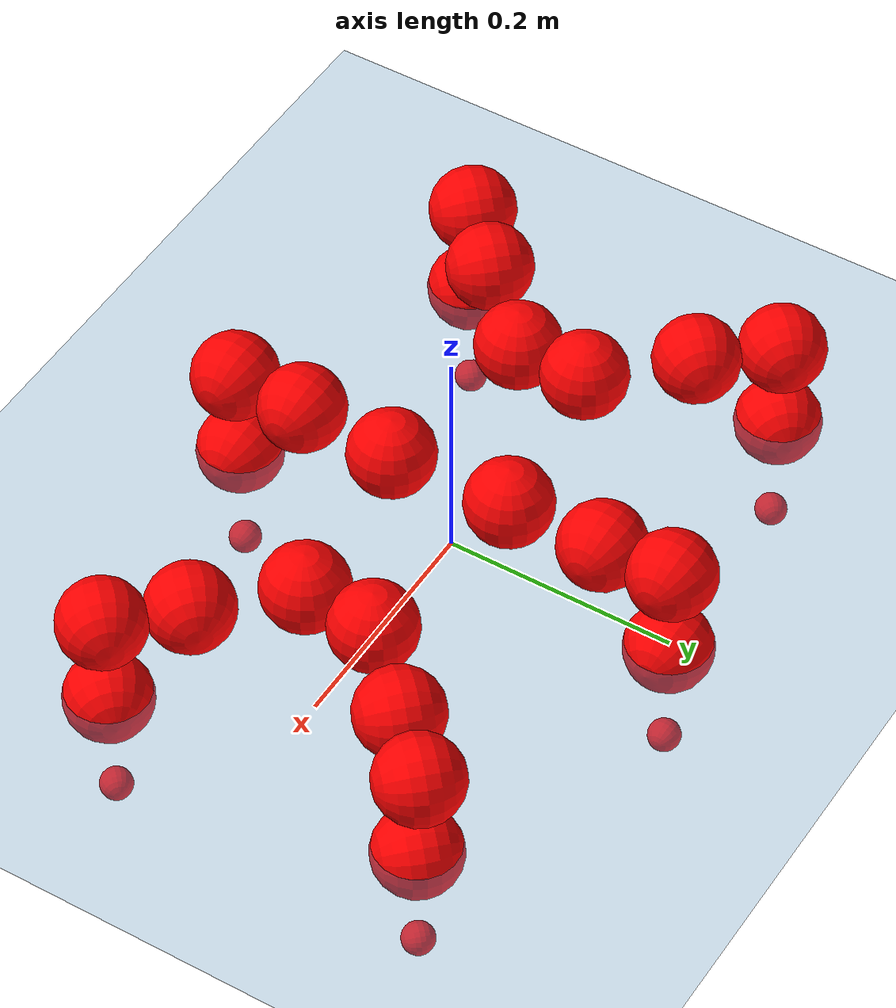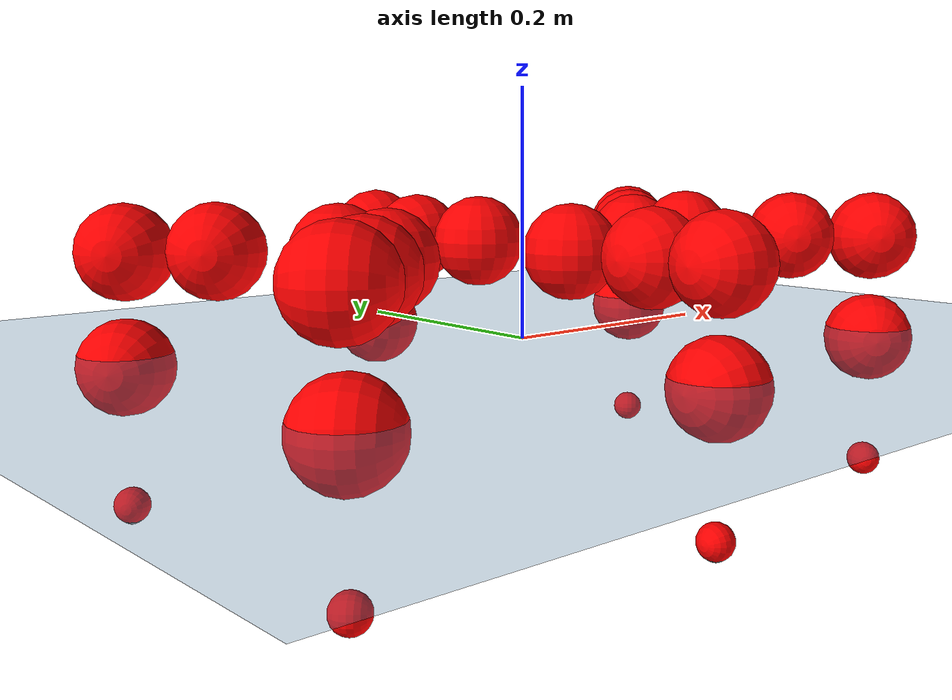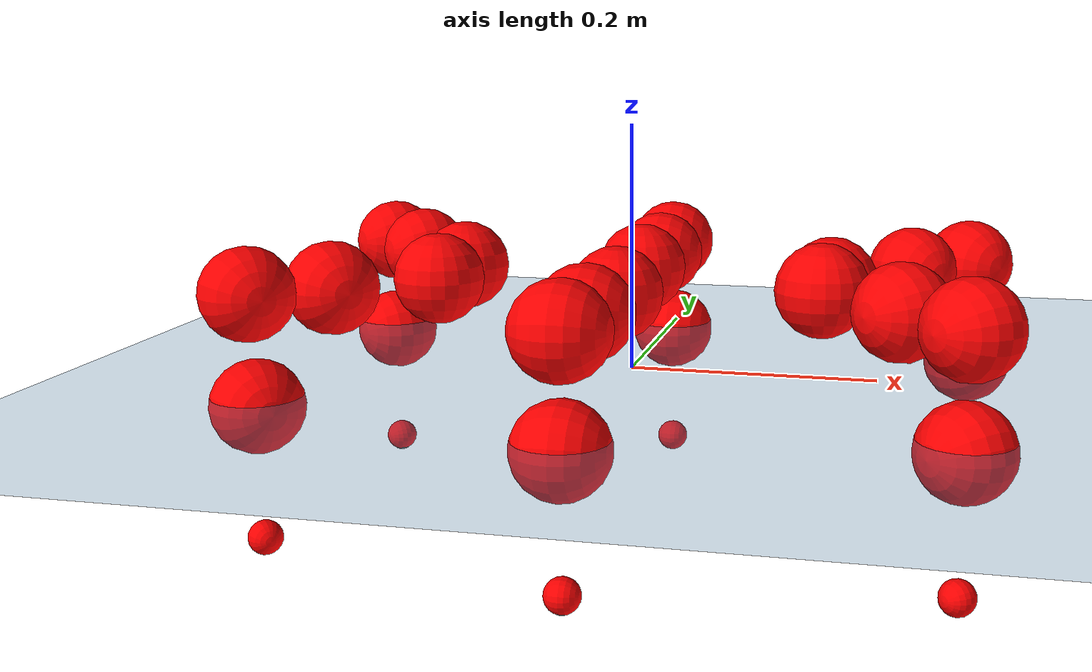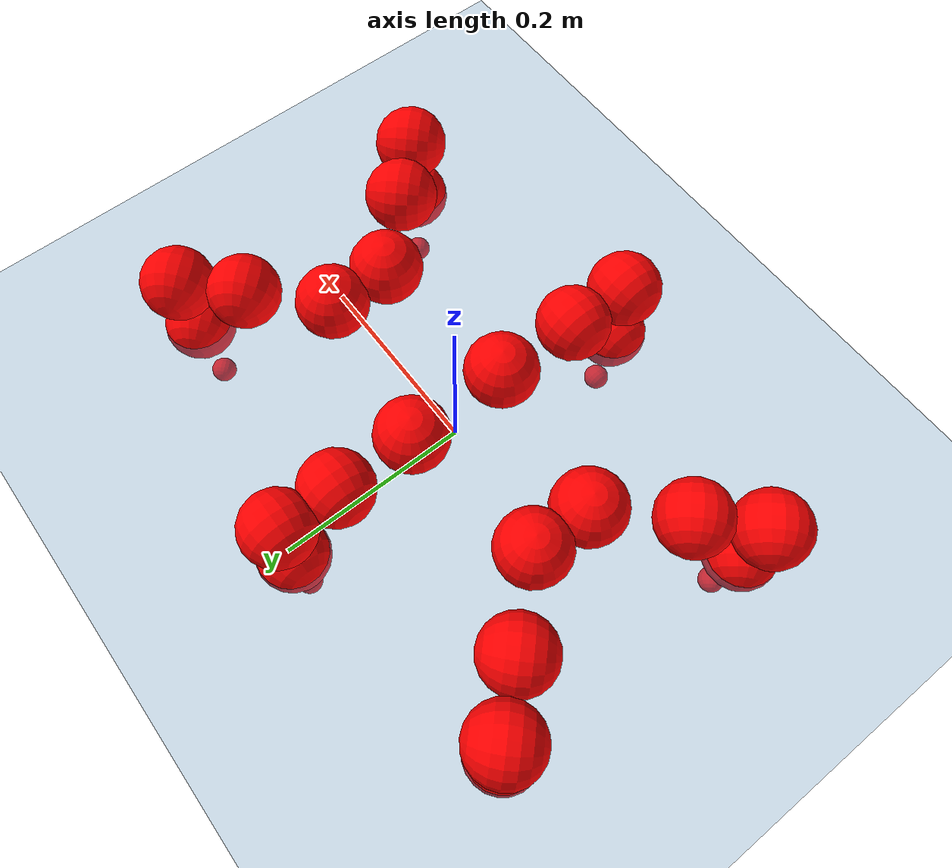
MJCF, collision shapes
<mujoco model="Golem">
  <compiler angle="radian" assetdir="assets" balanceinertia="true" inertiafromgeom="false"/>

  <option timestep="0.005" density="1.2" viscosity="2e-05"/>

  <size nkey="1"/>

  <visual>
    <quality shadowsize="8192"/>
    <map shadowclip="0.5"/>
  </visual>

  <default>
    <default class="/">
      <joint armature="0.01" damping="0.01" frictionloss="0.01"/>
      <geom contype="0" conaffinity="0" group="1" solref="-1000 -80"/>
      <site size="0.01 0.005 0.005" group="5"/>
      <general forcelimited="true" biastype="affine" gainprm="25" biasprm="0 -25 -0.5"/>
      <default class="visual">
        <geom type="mesh" group="2"/>
      </default>
      <default class="collision">
        <geom group="3"/>
      </default>
      <default class="foot">
        <geom size="0.01 0 0" condim="6" group="4" priority="1" solimp="0.015 1 0.01"/>
      </default>
      <default class="reward_collision_sphere">
        <geom group="5" rgba="1 0 0 1"/>
      </default>
    </default>
  </default>

  <asset>
    <texture type="skybox" colorspace="auto" name="//unnamed_texture_0" builtin="gradient" rgb1="0.95 0.95 0.95" rgb2="0.95 0.95 0.95" width="100" height="600"/>
    <texture type="2d" colorspace="auto" name="texplane" builtin="checker" rgb1="0.345 0.575 0.748" rgb2="0.345 0.575 0.748" markrgb="1 1 1" width="512" height="512"/>
    <material name="MatPlane" class="/" texture="texplane" texuniform="true" texrepeat="2 2" specular="0.9"/>
    <mesh name="body" class="/" file="body.stl" scale="0.001 0.001 0.001"/>
    <mesh name="coxa" class="/" file="coxa.stl" scale="0.001 0.001 0.001"/>
    <mesh name="femur" class="/" file="femur.stl" scale="0.001 0.001 0.001"/>
    <mesh name="tibia" class="/" file="tibia.stl" scale="0.001 0.001 0.001"/>
    <mesh name="tarsus" class="/" file="tarsus.stl" scale="0.001 0.001 0.001"/>
  </asset>

  <worldbody>
    <geom name="floor" class="/" size="100 100 0.125" type="plane" group="0" material="MatPlane"/>
    <light name="toplight_shadow" class="/" pos="0 0 5" dir="0.0990148 0.0990148 -0.990148" type="directional" ambient="0.04 0.04 0.04" diffuse="0.55 0.55 0.55" specular="0.12 0.12 0.12"/>
    <light name="toplight_fill" class="/" pos="0 0 5" dir="0.0990148 0.0990148 -0.990148" type="directional" castshadow="false" ambient="0.04 0.04 0.04" diffuse="0.3 0.3 0.3" specular="0.08 0.08 0.08"/>
    <body name="trunk" pos="0.000995971 -0.00105806 0.000931334" quat="1 0.000186108 -1.67323e-05 0.000422389">
      <inertial pos="0.00285322 -0.00121029 -0.00120789" quat="0.999983 -0.00137901 -0.00289623 -0.00488142" mass="3.05358" diaginertia="0.0105088 0.000951063 0.021564"/>
      <joint name="//unnamed_joint_0" type="free"/>
      <geom name="//unnamed_geom_1" class="/" pos="0 0 0.0737878" quat="1 0 0 0" type="mesh" rgba="0.9 0.9 0.9 1" mesh="body"/>
      <site name="imu" class="/" pos="0.128609 -0.00476759 0.101647" size="0.00923978"/>
      <camera name="track" class="/" pos="0 -1.24416 0" quat="0.707107 0.707107 0 0" mode="trackcom"/>
      <camera name="ego_camera" class="/" pos="0.1296 0 0.115293" quat="-0.5 -0.5 0.5 0.5"/>
      <body name="coxa_RR" pos="-0.176168 -0.0518829 0.074123" quat="0.382708 -2.691e-06 0.000107019 -0.923869">
        <inertial pos="0.000476826 -0.00121598 0.000895258" quat="1 -3.80453e-05 0.000240057 0.000146143" mass="0.156193" diaginertia="0.00967307 0.000904727 0.0200997"/>
        <joint name="coxa_joint_RR" class="/" pos="0 0 0" axis="0.0082195 -0.00363195 -0.99996" stiffness="0.000651306" range="-3.17665 3.13795" armature="0.00888217" damping="0" frictionloss="0.00930918"/>
        <geom name="//unnamed_geom_2" class="/" type="mesh" rgba="0.2 0.2 0.2 1" mesh="coxa"/>
        <geom name="//unnamed_geom_3" class="reward_collision_sphere" size="0.0369591" pos="-0.0299076 0 0"/>
        <body name="femur_RR" pos="0.0621138 0.00135571 0.00177086" quat="0.500195 -0.49982 0.50041 0.499574">
          <inertial pos="-0.000984207 -3.26775e-06 -0.00141691" quat="0.999996 -0.00118595 -0.000777162 0.00239413" mass="0.154503" diaginertia="0.00983909 0.000906135 0.0199539"/>
          <joint name="femur_joint_RR" class="/" pos="0 0 0" axis="-0.00690417 -0.012973 -0.999892" stiffness="0.000516614" range="-3.13893 3.13086" armature="0.00928157" damping="0.00263593" frictionloss="0.00947077"/>
          <geom name="//unnamed_geom_4" class="/" type="mesh" rgba="0.9 0.9 0.9 1" mesh="femur"/>
          <geom name="//unnamed_geom_5" class="reward_collision_sphere" size="0.0369591"/>
          <body name="tibia_RR" pos="-0.00170694 -0.0672056 -0.00167218" quat="-3.39395e-05 1 -4.06558e-05 -3.83356e-05">
            <inertial pos="-1.48247e-05 -0.00255665 1.4711e-05" quat="0.999911 -0.0106945 -0.00793452 -0.000945966" mass="0.157651" diaginertia="0.0101086 0.000923663 0.0199758"/>
            <joint name="tibia_joint_RR" class="/" pos="0 0 0" axis="-0.00641693 -0.00996814 0.99993" range="-3.10004 3.15708" armature="0.0090908" damping="0.011869" frictionloss="0.00925155"/>
            <geom name="//unnamed_geom_6" class="/" type="mesh" rgba="0.2 0.2 0.2 1" mesh="tibia"/>
            <geom name="//unnamed_geom_7" class="reward_collision_sphere" size="0.0369591"/>
            <body name="tarsus_RR" pos="0.0876792 -0.002645 -0.0020366" quat="1 0.000625498 4.77995e-05 -0.000122061">
              <inertial pos="0.059877 0.000262442 -0.00208014" quat="0.498122 0.489585 0.505244 0.506863" mass="0.163544" diaginertia="0.0100458 0.000951446 0.0198308"/>
              <joint name="tarsus_joint_RR" class="/" pos="0 0 0" axis="0.000695158 -0.00274051 0.999996" range="-3.17844 3.15864" armature="0.00952716" damping="0" frictionloss="0.0103907"/>
              <geom name="//unnamed_geom_8" class="/" type="mesh" rgba="0.9 0.9 0.9 1" mesh="tarsus"/>
              <geom name="foot_1" class="foot" size="0.0095661" pos="0.111655 0 0" quat="0 -0.707107 0 0.707107"/>
              <geom name="//unnamed_geom_10" class="reward_collision_sphere" size="0.0369591"/>
              <geom name="//unnamed_geom_11" class="reward_collision_sphere" size="0.0138597" pos="0.107169 0 0"/>
              <site name="foot_1" class="foot" pos="0.111655 0 0" quat="0 -0.707107 0 0.707107" size="0.00923978"/>
            </body>
          </body>
        </body>
      </body>
      <body name="coxa_RM" pos="-0.00116723 -0.0846863 0.0727429" quat="0.706752 -0.000934654 0.000238401 -0.707461">
        <inertial pos="0.00238872 0.000576295 -0.00223867" quat="1 -0.000221556 -0.00022021 -0.000667705" mass="0.158955" diaginertia="0.0098098 0.000959694 0.020317"/>
        <joint name="coxa_joint_RM" class="/" pos="0 0 0" axis="0.00471476 -0.00141696 -0.999988" range="-3.14038 3.13966" armature="0.0103378" damping="0.0179773" frictionloss="0.00918488"/>
        <geom name="//unnamed_geom_12" class="/" type="mesh" rgba="0.2 0.2 0.2 1" mesh="coxa"/>
        <geom name="//unnamed_geom_13" class="reward_collision_sphere" size="0.0369591" pos="-0.0299076 0 0"/>
        <body name="femur_RM" pos="0.0563075 -0.00315185 0.00150848" quat="0.499422 -0.500134 0.500471 0.499973">
          <inertial pos="0.00263721 -0.00189005 0.000203563" quat="0.999999 -0.000809906 -0.0011971 -0.000679974" mass="0.152636" diaginertia="0.00918539 0.000896027 0.0190102"/>
          <joint name="femur_joint_RM" class="/" pos="0 0 0" axis="0.00456358 0.00945779 -0.999945" range="-3.13318 3.08424" armature="0.00887042" damping="0.0219438" frictionloss="0.00868424"/>
          <geom name="//unnamed_geom_14" class="/" type="mesh" rgba="0.9 0.9 0.9 1" mesh="femur"/>
          <geom name="//unnamed_geom_15" class="reward_collision_sphere" size="0.0369591"/>
          <body name="tibia_RM" pos="-0.000885188 -0.0645137 -0.00115777" quat="-4.89602e-05 1 -0.000374483 0.000725235">
            <inertial pos="-0.00173153 0.00264034 -0.000167897" quat="0.99997 -0.00527756 -0.0016146 0.00552551" mass="0.152895" diaginertia="0.00969083 0.000914592 0.0199388"/>
            <joint name="tibia_joint_RM" class="/" pos="0 0 0" axis="-0.00316858 0.00273495 0.999991" range="-3.13027 3.17467" armature="0.00951066" damping="0.021589" frictionloss="0.00922842"/>
            <geom name="//unnamed_geom_16" class="/" type="mesh" rgba="0.2 0.2 0.2 1" mesh="tibia"/>
            <geom name="//unnamed_geom_17" class="reward_collision_sphere" size="0.0369591"/>
            <body name="tarsus_RM" pos="0.085123 -0.00107864 0.000567077" quat="1 9.24475e-05 -5.12465e-05 2.36776e-05">
              <inertial pos="0.0625096 0.00026413 -0.000361456" quat="0.501993 0.499231 0.499576 0.499194" mass="0.162363" diaginertia="0.00983522 0.000927094 0.0210451"/>
              <joint name="tarsus_joint_RM" class="/" pos="0 0 0" axis="0.00414734 -0.00278411 0.999988" range="-3.18796 3.0864" armature="0.0093866" damping="0.00601783" frictionloss="0.00811846"/>
              <geom name="//unnamed_geom_18" class="/" type="mesh" rgba="0.9 0.9 0.9 1" mesh="tarsus"/>
              <geom name="foot_2" class="foot" size="0.00996764" pos="0.111655 0 0" quat="0 -0.707107 0 0.707107"/>
              <geom name="//unnamed_geom_20" class="reward_collision_sphere" size="0.0369591"/>
              <geom name="//unnamed_geom_21" class="reward_collision_sphere" size="0.0138597" pos="0.107169 0 0"/>
              <site name="foot_2" class="foot" pos="0.111655 0 0" quat="0 -0.707107 0 0.707107" size="0.00923978"/>
            </body>
          </body>
        </body>
      </body>
      <body name="coxa_RF" pos="0.177522 -0.0547182 0.0770211" quat="0.923859 -2.95196e-05 -0.000119487 -0.382734">
        <inertial pos="0.00117004 -0.002771 0.00259374" quat="0.999906 0.0135087 -0.00052503 -0.00208955" mass="0.148583" diaginertia="0.00957824 0.00090768 0.0198484"/>
        <joint name="coxa_joint_RF" class="/" pos="0 0 0" axis="0.00535338 -0.00789129 -0.999955" range="-3.08469 3.15897" armature="0.00800754" damping="0" frictionloss="0.00898249"/>
        <geom name="//unnamed_geom_22" class="/" type="mesh" rgba="0.2 0.2 0.2 1" mesh="coxa"/>
        <geom name="//unnamed_geom_23" class="reward_collision_sphere" size="0.0369591" pos="-0.0299076 0 0"/>
        <body name="femur_RF" pos="0.0598079 -0.00114327 -0.00114306" quat="0.499845 -0.499912 0.500181 0.500062">
          <inertial pos="-0.00222942 0.00260433 0.000341084" quat="0.999994 0.000886716 0.00215303 0.00260485" mass="0.157417" diaginertia="0.0100829 0.000966218 0.0211858"/>
          <joint name="femur_joint_RF" class="/" pos="0 0 0" axis="0.00256529 -0.00014712 -0.999997" range="-3.13657 3.12164" armature="0.00918408" damping="0.0045801" frictionloss="0.00886828"/>
          <geom name="//unnamed_geom_24" class="/" type="mesh" rgba="0.9 0.9 0.9 1" mesh="femur"/>
          <geom name="//unnamed_geom_25" class="reward_collision_sphere" size="0.0369591"/>
          <body name="tibia_RF" pos="-0.000162474 -0.0685422 0.00015272" quat="1.28848e-05 1 5.35715e-06 -5.67854e-05">
            <inertial pos="-0.000115723 0.000348333 -0.00263277" quat="0.999909 0.0065957 0.0117229 -0.000322486" mass="0.158315" diaginertia="0.0100392 0.000906798 0.0211751"/>
            <joint name="tibia_joint_RF" class="/" pos="0 0 0" axis="0.00270031 -0.000868405 0.999996" range="-3.14945 3.16231" armature="0.00942639" damping="0.00618766" frictionloss="0.0098606"/>
            <geom name="//unnamed_geom_26" class="/" type="mesh" rgba="0.2 0.2 0.2 1" mesh="tibia"/>
            <geom name="//unnamed_geom_27" class="reward_collision_sphere" size="0.0369591"/>
            <body name="tarsus_RF" pos="0.0871034 -0.000262024 0.000214418" quat="0.999999 0.000185121 -0.00116256 -0.000121224">
              <inertial pos="0.0592819 -0.000915711 -0.000746458" quat="0.49806 0.501808 0.500535 0.49959" mass="0.16122" diaginertia="0.0101233 0.000917716 0.020091"/>
              <joint name="tarsus_joint_RF" class="/" pos="0 0 0" axis="-0.00685538 0.00283283 0.999972" stiffness="0.0231464" range="-3.09098 3.1424" armature="0.00860944" damping="0" frictionloss="0.00874596"/>
              <geom name="//unnamed_geom_28" class="/" type="mesh" rgba="0.9 0.9 0.9 1" mesh="tarsus"/>
              <geom name="foot_3" class="foot" size="0.0093809" pos="0.111655 0 0" quat="0 -0.707107 0 0.707107"/>
              <geom name="//unnamed_geom_30" class="reward_collision_sphere" size="0.0369591"/>
              <geom name="//unnamed_geom_31" class="reward_collision_sphere" size="0.0138597" pos="0.107169 0 0"/>
              <site name="foot_3" class="foot" pos="0.111655 0 0" quat="0 -0.707107 0 0.707107" size="0.00923978"/>
            </body>
          </body>
        </body>
      </body>
      <body name="coxa_LR" pos="-0.17475 0.0531694 0.0748836" quat="0.382535 -7.56257e-05 -6.05937e-05 0.923941">
        <inertial pos="-0.00201833 -0.00282453 0.000489147" quat="0.999929 0.00837229 0.00845899 0.000990241" mass="0.151326" diaginertia="0.0098704 0.00087966 0.0191641"/>
        <joint name="coxa_joint_LR" class="/" pos="0 0 0" axis="9.47002e-05 -0.000241906 -1" stiffness="0.000714321" range="-3.16569 3.15192" armature="0.00937724" damping="0.0191132" frictionloss="0.00933716"/>
        <geom name="//unnamed_geom_32" class="/" type="mesh" rgba="0.2 0.2 0.2 1" mesh="coxa"/>
        <geom name="//unnamed_geom_33" class="reward_collision_sphere" size="0.0369591" pos="-0.0299076 0 0"/>
        <body name="femur_LR" pos="0.0620261 -0.00409764 0.000459379" quat="0.500106 -0.499679 0.500239 0.499975">
          <inertial pos="-0.000614342 -0.00250183 -0.00107906" quat="1 0.000265827 -0.000627452 0.000405178" mass="0.15634" diaginertia="0.00948981 0.000953297 0.0196527"/>
          <joint name="femur_joint_LR" class="/" pos="0 0 0" axis="-0.000470276 -0.000786066 1" range="-3.08579 3.14666" armature="0.00952557" damping="0.00206578" frictionloss="0.00921171"/>
          <geom name="//unnamed_geom_34" class="/" type="mesh" rgba="0.9 0.9 0.9 1" mesh="femur"/>
          <geom name="//unnamed_geom_35" class="reward_collision_sphere" size="0.0369591"/>
          <body name="tibia_LR" pos="0.00111304 -0.0707006 -0.00317686" quat="-0.000465096 1 0.000434338 -0.00018131">
            <inertial pos="0.00130604 -0.00245975 -0.000562227" quat="0.999909 0.00718874 0.00337893 -0.0108716" mass="0.154116" diaginertia="0.00940944 0.000901701 0.0201342"/>
            <joint name="tibia_joint_LR" class="/" pos="0 0 0" axis="0.000233403 0.00186304 -0.999998" range="-3.11459 3.19379" armature="0.00897952" damping="0" frictionloss="0.00916748"/>
            <geom name="//unnamed_geom_36" class="/" type="mesh" rgba="0.2 0.2 0.2 1" mesh="tibia"/>
            <geom name="//unnamed_geom_37" class="reward_collision_sphere" size="0.0369591"/>
            <body name="tarsus_LR" pos="0.0867007 0.00187884 -0.00207957" quat="0.999999 0.00083587 -0.000661654 0.000175761">
              <inertial pos="0.0620032 -0.00239325 -0.00254211" quat="0.499165 0.500265 0.500575 0.499994" mass="0.158856" diaginertia="0.00988235 0.000919242 0.0196865"/>
              <joint name="tarsus_joint_LR" class="/" pos="0 0 0" axis="0.00484749 -0.0148259 -0.999878" range="-3.14702 3.10722" armature="0.00824796" damping="0" frictionloss="0.00852226"/>
              <geom name="//unnamed_geom_38" class="/" type="mesh" rgba="0.9 0.9 0.9 1" mesh="tarsus"/>
              <geom name="foot_4" class="foot" size="0.0101578" pos="0.111655 0 0" quat="0.707107 0 -0.707107 0"/>
              <geom name="//unnamed_geom_40" class="reward_collision_sphere" size="0.0369591"/>
              <geom name="//unnamed_geom_41" class="reward_collision_sphere" size="0.0138597" pos="0.107169 0 0"/>
              <site name="foot_4" class="foot" pos="0.111655 0 0" quat="0.707107 0 -0.707107 0" size="0.00923978"/>
            </body>
          </body>
        </body>
      </body>
      <body name="coxa_LM" pos="-0.00329084 0.0822791 0.0744377" quat="0.707335 0.000114697 -0.000253454 0.706879">
        <inertial pos="0.000838781 -0.00224842 0.000322381" quat="0.999909 0.00927743 -0.00733797 0.00653773" mass="0.157728" diaginertia="0.0101004 0.000959452 0.0209602"/>
        <joint name="coxa_joint_LM" class="/" pos="0 0 0" axis="-0.00347554 -0.0119069 -0.999923" range="-3.12726 3.11852" armature="0.00898901" damping="0.0126207" frictionloss="0.00999975"/>
        <geom name="//unnamed_geom_42" class="/" type="mesh" rgba="0.2 0.2 0.2 1" mesh="coxa"/>
        <geom name="//unnamed_geom_43" class="reward_collision_sphere" size="0.0369591" pos="-0.0299076 0 0"/>
        <body name="femur_LM" pos="0.0543275 0.000245242 -0.00142337" quat="0.499827 -0.499729 0.500263 0.500181">
          <inertial pos="0.00209372 0.000744215 0.000809623" quat="0.999929 0.00933686 -0.00534894 -0.00505458" mass="0.163304" diaginertia="0.00979702 0.000991896 0.0211382"/>
          <joint name="femur_joint_LM" class="/" pos="0 0 0" axis="0.00331051 0.000816966 0.999994" range="-3.15412 3.13428" armature="0.00983545" damping="0.00791394" frictionloss="0.00827567"/>
          <geom name="//unnamed_geom_44" class="/" type="mesh" rgba="0.9 0.9 0.9 1" mesh="femur"/>
          <geom name="//unnamed_geom_45" class="reward_collision_sphere" size="0.0369591"/>
          <body name="tibia_LM" pos="-0.00208238 -0.0619043 0.000278199" quat="-0.000489516 0.999999 -0.00100686 -0.000383177">
            <inertial pos="0.00167571 0.000504695 -0.0026887" quat="0.999907 0.00532445 0.00558169 -0.0112627" mass="0.15924" diaginertia="0.00991282 0.000973676 0.0208258"/>
            <joint name="tibia_joint_LM" class="/" pos="0 0 0" axis="-0.00263593 0.00769922 -0.999967" range="-3.13684 3.13998" armature="0.00934527" damping="0.000791748" frictionloss="0.00806397"/>
            <geom name="//unnamed_geom_46" class="/" type="mesh" rgba="0.2 0.2 0.2 1" mesh="tibia"/>
            <geom name="//unnamed_geom_47" class="reward_collision_sphere" size="0.0369591"/>
            <body name="tarsus_LM" pos="0.0850785 0.000217891 -0.00030058" quat="0.999999 0.00037598 -0.000621957 0.000914149">
              <inertial pos="0.0604821 -0.000732408 0.00127451" quat="0.496968 0.511628 0.496997 0.494221" mass="0.164091" diaginertia="0.0102203 0.000937138 0.0205189"/>
              <joint name="tarsus_joint_LM" class="/" pos="0 0 0" axis="0.000850084 0.011409 -0.999935" stiffness="0.00690121" range="-3.14643 3.14108" armature="0.00924289" damping="0" frictionloss="0.0104998"/>
              <geom name="//unnamed_geom_48" class="/" type="mesh" rgba="0.9 0.9 0.9 1" mesh="tarsus"/>
              <geom name="foot_5" class="foot" size="0.00929889" pos="0.111655 0 0" quat="0.707107 0 -0.707107 0"/>
              <geom name="//unnamed_geom_50" class="reward_collision_sphere" size="0.0369591"/>
              <geom name="//unnamed_geom_51" class="reward_collision_sphere" size="0.0138597" pos="0.107169 0 0"/>
              <site name="foot_5" class="foot" pos="0.111655 0 0" quat="0.707107 0 -0.707107 0" size="0.00923978"/>
            </body>
          </body>
        </body>
      </body>
      <body name="coxa_LF" pos="0.179905 0.0507155 0.0720408" quat="0.923936 0.000385585 -0.000209533 0.382546">
        <inertial pos="-0.00012162 8.85682e-05 0.00278197" quat="0.999932 0.00208505 -0.00549938 -0.010071" mass="0.153529" diaginertia="0.00946307 0.000958671 0.0197842"/>
        <joint name="coxa_joint_LF" class="/" pos="0 0 0" axis="0.0150529 -0.00664237 -0.999865" range="-3.11887 3.1438" armature="0.00799692" damping="0" frictionloss="0.0103837"/>
        <geom name="//unnamed_geom_52" class="/" type="mesh" rgba="0.2 0.2 0.2 1" mesh="coxa"/>
        <geom name="//unnamed_geom_53" class="reward_collision_sphere" size="0.0369591" pos="-0.0299076 0 0"/>
        <body name="femur_LF" pos="0.0587291 0.000171202 0.00061851" quat="0.499817 -0.500191 0.500086 0.499907">
          <inertial pos="-0.00261117 -0.000758114 0.00242454" quat="1 -0.000492226 -0.000134008 0.000114966" mass="0.157047" diaginertia="0.010232 0.00092789 0.0204147"/>
          <joint name="femur_joint_LF" class="/" pos="0 0 0" axis="-1.86706e-05 0.000779723 1" range="-3.13077 3.13462" armature="0.0100109" damping="0.00339027" frictionloss="0.0087908"/>
          <geom name="//unnamed_geom_54" class="/" type="mesh" rgba="0.9 0.9 0.9 1" mesh="femur"/>
          <geom name="//unnamed_geom_55" class="reward_collision_sphere" size="0.0369591"/>
          <body name="tibia_LF" pos="-0.000552846 -0.0666037 -0.000360965" quat="0.000156572 1 -0.000610675 0.000418041">
            <inertial pos="-0.000351889 -0.00228072 0.000973824" quat="1 0.000246428 -0.000101978 -0.000310632" mass="0.153153" diaginertia="0.00923315 0.000907288 0.0196613"/>
            <joint name="tibia_joint_LF" class="/" pos="0 0 0" axis="0.000649895 0.00141639 -0.999999" range="-3.14832 3.12474" armature="0.0103145" damping="0" frictionloss="0.00949544"/>
            <geom name="//unnamed_geom_56" class="/" type="mesh" rgba="0.2 0.2 0.2 1" mesh="tibia"/>
            <geom name="//unnamed_geom_57" class="reward_collision_sphere" size="0.0369591"/>
            <body name="tarsus_LF" pos="0.0854489 6.0801e-05 0.0020417" quat="1 -2.34028e-05 -0.000142987 0.000429707">
              <inertial pos="0.0593162 0.00197719 0.000940202" quat="0.498351 0.507206 0.494605 0.499754" mass="0.1481" diaginertia="0.00953456 0.000873236 0.0198229"/>
              <joint name="tarsus_joint_LF" class="/" pos="0 0 0" axis="0.00193114 -0.00189754 -0.999996" range="-3.15954 3.13974" armature="0.0105037" damping="0.0090329" frictionloss="0.00802718"/>
              <geom name="//unnamed_geom_58" class="/" type="mesh" rgba="0.9 0.9 0.9 1" mesh="tarsus"/>
              <geom name="foot_6" class="foot" size="0.0091344" pos="0.111655 0 0" quat="0.707107 0 -0.707107 0"/>
              <geom name="//unnamed_geom_60" class="reward_collision_sphere" size="0.0369591"/>
              <geom name="//unnamed_geom_61" class="reward_collision_sphere" size="0.0138597" pos="0.107169 0 0"/>
              <site name="foot_6" class="foot" pos="0.111655 0 0" quat="0.707107 0 -0.707107 0" size="0.00923978"/>
            </body>
          </body>
        </body>
      </body>
    </body>
  </worldbody>

  <contact>
    <pair class="/" geom1="floor" geom2="foot_1" name="//unnamed_contact_0"/>
    <pair class="/" geom1="floor" geom2="foot_2" name="//unnamed_contact_1"/>
    <pair class="/" geom1="floor" geom2="foot_3" name="//unnamed_contact_2"/>
    <pair class="/" geom1="floor" geom2="foot_4" name="//unnamed_contact_3"/>
    <pair class="/" geom1="floor" geom2="foot_5" name="//unnamed_contact_4"/>
    <pair class="/" geom1="floor" geom2="foot_6" name="//unnamed_contact_5"/>
  </contact>

  <actuator>
    <general name="coxa_joint_RR" class="/" joint="coxa_joint_RR" forcerange="-6.80161 6.80161" gainprm="23.5823" biasprm="0 -23.5823 -0.485387"/>
    <general name="femur_joint_RR" class="/" joint="femur_joint_RR" forcerange="-6.84392 6.84392" gainprm="23.5823" biasprm="0 -23.5823 -0.485387"/>
    <general name="tibia_joint_RR" class="/" joint="tibia_joint_RR" forcerange="-6.92427 6.92427" gainprm="23.5823" biasprm="0 -23.5823 -0.485387"/>
    <general name="tarsus_joint_RR" class="/" joint="tarsus_joint_RR" forcerange="-7.43193 7.43193" gainprm="23.5823" biasprm="0 -23.5823 -0.485387"/>
    <general name="coxa_joint_RM" class="/" joint="coxa_joint_RM" forcerange="-6.62289 6.62289" gainprm="23.5823" biasprm="0 -23.5823 -0.485387"/>
    <general name="femur_joint_RM" class="/" joint="femur_joint_RM" forcerange="-6.71977 6.71977" gainprm="23.5823" biasprm="0 -23.5823 -0.485387"/>
    <general name="tibia_joint_RM" class="/" joint="tibia_joint_RM" forcerange="-6.72424 6.72424" gainprm="23.5823" biasprm="0 -23.5823 -0.485387"/>
    <general name="tarsus_joint_RM" class="/" joint="tarsus_joint_RM" forcerange="-7.42443 7.42443" gainprm="23.5823" biasprm="0 -23.5823 -0.485387"/>
    <general name="coxa_joint_RF" class="/" joint="coxa_joint_RF" forcerange="-7.04735 7.04735" gainprm="23.5823" biasprm="0 -23.5823 -0.485387"/>
    <general name="femur_joint_RF" class="/" joint="femur_joint_RF" forcerange="-6.05588 6.05588" gainprm="23.5823" biasprm="0 -23.5823 -0.485387"/>
    <general name="tibia_joint_RF" class="/" joint="tibia_joint_RF" forcerange="-7.21404 7.21404" gainprm="23.5823" biasprm="0 -23.5823 -0.485387"/>
    <general name="tarsus_joint_RF" class="/" joint="tarsus_joint_RF" forcerange="-6.21575 6.21575" gainprm="23.5823" biasprm="0 -23.5823 -0.485387"/>
    <general name="coxa_joint_LR" class="/" joint="coxa_joint_LR" forcerange="-6.35484 6.35484" gainprm="23.5823" biasprm="0 -23.5823 -0.485387"/>
    <general name="femur_joint_LR" class="/" joint="femur_joint_LR" forcerange="-6.87446 6.87446" gainprm="23.5823" biasprm="0 -23.5823 -0.485387"/>
    <general name="tibia_joint_LR" class="/" joint="tibia_joint_LR" forcerange="-6.75832 6.75832" gainprm="23.5823" biasprm="0 -23.5823 -0.485387"/>
    <general name="tarsus_joint_LR" class="/" joint="tarsus_joint_LR" forcerange="-6.34676 6.34676" gainprm="23.5823" biasprm="0 -23.5823 -0.485387"/>
    <general name="coxa_joint_LM" class="/" joint="coxa_joint_LM" forcerange="-7.01083 7.01083" gainprm="23.5823" biasprm="0 -23.5823 -0.485387"/>
    <general name="femur_joint_LM" class="/" joint="femur_joint_LM" forcerange="-6.28064 6.28064" gainprm="23.5823" biasprm="0 -23.5823 -0.485387"/>
    <general name="tibia_joint_LM" class="/" joint="tibia_joint_LM" forcerange="-6.74625 6.74625" gainprm="23.5823" biasprm="0 -23.5823 -0.485387"/>
    <general name="tarsus_joint_LM" class="/" joint="tarsus_joint_LM" forcerange="-7.01828 7.01828" gainprm="23.5823" biasprm="0 -23.5823 -0.485387"/>
    <general name="coxa_joint_LF" class="/" joint="coxa_joint_LF" forcerange="-6.06365 6.06365" gainprm="23.5823" biasprm="0 -23.5823 -0.485387"/>
    <general name="femur_joint_LF" class="/" joint="femur_joint_LF" forcerange="-6.34972 6.34972" gainprm="23.5823" biasprm="0 -23.5823 -0.485387"/>
    <general name="tibia_joint_LF" class="/" joint="tibia_joint_LF" forcerange="-7.13074 7.13074" gainprm="23.5823" biasprm="0 -23.5823 -0.485387"/>
    <general name="tarsus_joint_LF" class="/" joint="tarsus_joint_LF" forcerange="-6.80133 6.80133" gainprm="23.5823" biasprm="0 -23.5823 -0.485387"/>
  </actuator>

  <sensor>
    <gyro site="imu" name="imu_angular_velocity"/>
    <velocimeter site="imu" name="imu_linear_velocity"/>
    <framelinvel objtype="site" objname="foot_1" name="foot_1_global_linear_velocity"/>
    <framelinvel objtype="site" objname="foot_2" name="foot_2_global_linear_velocity"/>
    <framelinvel objtype="site" objname="foot_3" name="foot_3_global_linear_velocity"/>
    <framelinvel objtype="site" objname="foot_4" name="foot_4_global_linear_velocity"/>
    <framelinvel objtype="site" objname="foot_5" name="foot_5_global_linear_velocity"/>
    <framelinvel objtype="site" objname="foot_6" name="foot_6_global_linear_velocity"/>
  </sensor>

  <keyframe>
    <key name="home" qpos="0 0 0.1457 1 0 0 0 0 0 0 0 0 0 0 0 0 0 0 0 0 0 0 0 0 0 0 0 0 0 0 0"/>
  </keyframe>
</mujoco>
